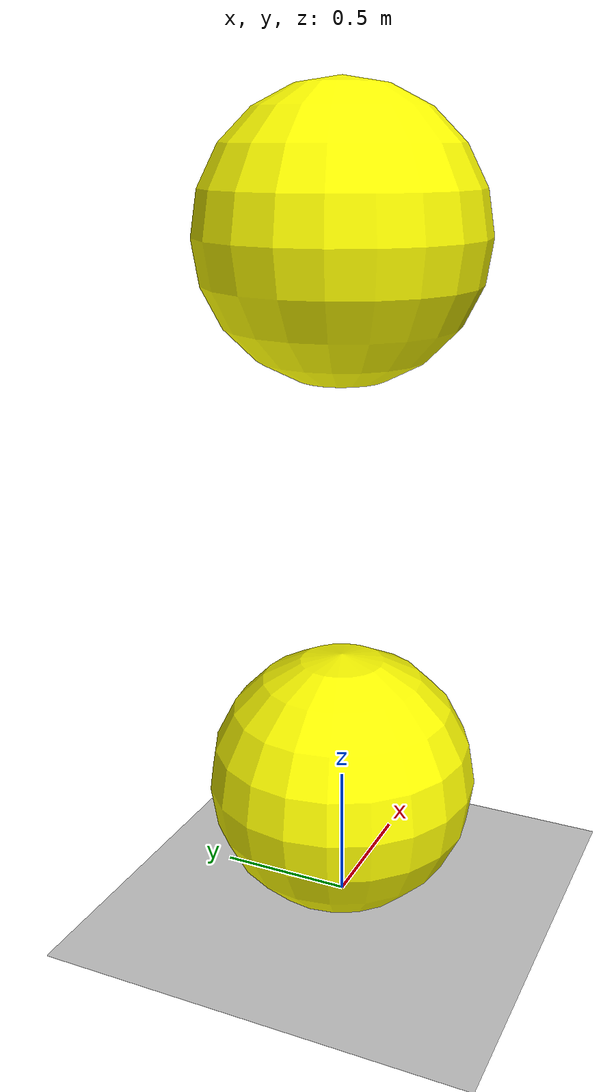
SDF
<?xml version="1.0"?>
<sdf version="1.4">
  <world name="default">

    <!-- Ground Plane -->
    <include>
      <uri>model://ground_plane</uri>
    </include>

    <include>
      <uri>model://sun</uri>
    </include>

   <model name ='sphere1'>
     <pose>-0 0 0 0 0 0</pose>
     <link name ='link'>
       <pose>0 0 2.5 0 0 0</pose>
       <collision name ='collision'>
         <geometry>
           <sphere><radius>0.5</radius></sphere>
         </geometry>
       </collision>
       <visual name ='visual'>
         <geometry>
           <sphere><radius>0.5</radius></sphere>
         </geometry>
         <material>
           <ambient>1 1 0 1</ambient>
           <diffuse>1 1 0 1</diffuse>
           <specular>0.1 0.1 0.1 1</specular>
           <emissive>0 0 0 0</emissive>
         </material>
       </visual>
      </link>
   </model>

   <model name ='sphere2'>
     <pose>-0 0 0 0 0 0</pose>
     <link name ='link'>
       <pose>0 0 .5 0 0 0</pose>
       <collision name ='collision'>
         <geometry>
           <sphere><radius>0.5</radius></sphere>
         </geometry>
       </collision>
       <visual name ='visual'>
         <geometry>
           <sphere><radius>0.5</radius></sphere>
         </geometry>
         <material>
           <ambient>1 1 0 1</ambient>
           <diffuse>1 1 0 1</diffuse>
           <specular>0.1 0.1 0.1 1</specular>
           <emissive>0 0 0 0</emissive>
         </material>
       </visual>
      </link>
   </model>

<!-- Light Source -->
        <light type="directional" name="sun">
            <pose>0 0 10 0 0 0</pose>
            <diffuse>1.0 1.0 1.0 1</diffuse>
            <specular>0 0 0 1</specular>
            <attenuation>
                <range>20</range>
                <linear>0.01</linear>
                <constant>0.8</constant>
                <quadratic>0.0</quadratic>
            </attenuation>
            <direction>0.0 0.2 -8.0</direction>
            <cast_shadows>true</cast_shadows>
        </light>

  </world>
</sdf>
